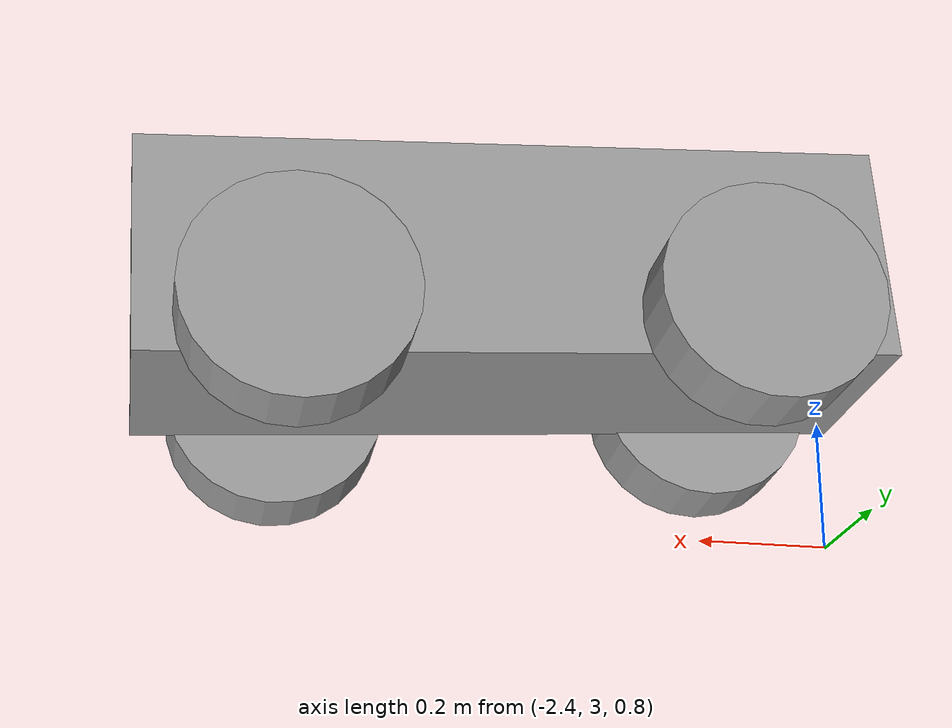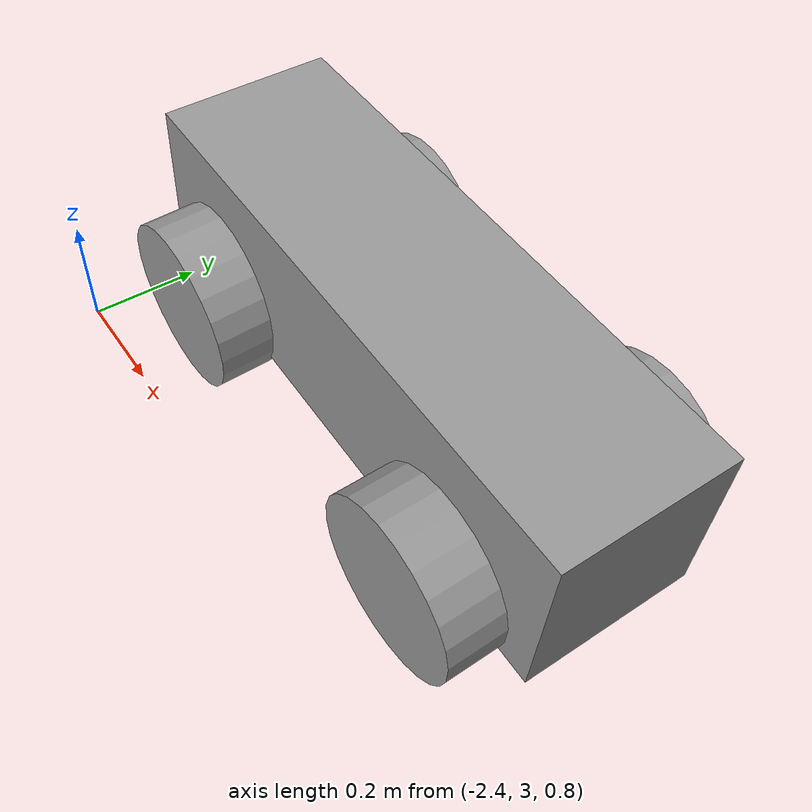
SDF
<?xml version='1.0'?>
<sdf version='1.7'>
  <model name='HumanoidRobot'>
    <link name='link_0'>
      <inertial>
        <mass>1</mass>
        <inertia>
          <ixx>0.166667</ixx>
          <ixy>0</ixy>
          <ixz>0</ixz>
          <iyy>0.166667</iyy>
          <iyz>0</iyz>
          <izz>0.166667</izz>
        </inertia>
        <pose>0 0 0 0 -0 0</pose>
      </inertial>
      <pose>-1.83737 3.32183 1.03724 0.010962 0.070414 0.002619</pose>
      <gravity>1</gravity>
      <self_collide>0</self_collide>
      <kinematic>0</kinematic>
      <enable_wind>0</enable_wind>
      <visual name='visual'>
        <pose>0 0 0 0 -0 0</pose>
        <geometry>
          <box>
            <size>1 0.3 0.3</size>
          </box>
        </geometry>
        <material>
          <lighting>1</lighting>
          <script>
            <uri>file://media/materials/scripts/gazebo.material</uri>
            <name>Gazebo/Grey</name>
          </script>
          <shader type='pixel'>
            <normal_map>__default__</normal_map>
          </shader>
          <ambient>0.3 0.3 0.3 1</ambient>
          <diffuse>0.7 0.7 0.7 1</diffuse>
          <specular>0.01 0.01 0.01 1</specular>
          <emissive>0 0 0 1</emissive>
        </material>
        <transparency>0</transparency>
        <cast_shadows>1</cast_shadows>
      </visual>
      <collision name='collision'>
        <laser_retro>0</laser_retro>
        <max_contacts>10</max_contacts>
        <pose>0 0 0 0 -0 0</pose>
        <geometry>
          <box>
            <size>1 0.3 0.3</size>
          </box>
        </geometry>
        <surface>
          <friction>
            <ode>
              <mu>1</mu>
              <mu2>1</mu2>
              <fdir1>0 0 0</fdir1>
              <slip1>0</slip1>
              <slip2>0</slip2>
            </ode>
            <torsional>
              <coefficient>1</coefficient>
              <patch_radius>0</patch_radius>
              <surface_radius>0</surface_radius>
              <use_patch_radius>1</use_patch_radius>
              <ode>
                <slip>0</slip>
              </ode>
            </torsional>
          </friction>
          <bounce>
            <restitution_coefficient>0</restitution_coefficient>
            <threshold>1e+06</threshold>
          </bounce>
          <contact>
            <collide_without_contact>0</collide_without_contact>
            <collide_without_contact_bitmask>1</collide_without_contact_bitmask>
            <collide_bitmask>1</collide_bitmask>
            <ode>
              <soft_cfm>0</soft_cfm>
              <soft_erp>0.2</soft_erp>
              <kp>1e+13</kp>
              <kd>1</kd>
              <max_vel>0.01</max_vel>
              <min_depth>0</min_depth>
            </ode>
            <bullet>
              <split_impulse>1</split_impulse>
              <split_impulse_penetration_threshold>-0.01</split_impulse_penetration_threshold>
              <soft_cfm>0</soft_cfm>
              <soft_erp>0.2</soft_erp>
              <kp>1e+13</kp>
              <kd>1</kd>
            </bullet>
          </contact>
        </surface>
      </collision>
    </link>
    <link name='link_1'>
      <inertial>
        <mass>1</mass>
        <inertia>
          <ixx>0.145833</ixx>
          <ixy>0</ixy>
          <ixz>0</ixz>
          <iyy>0.145833</iyy>
          <iyz>0</iyz>
          <izz>0.125</izz>
        </inertia>
        <pose>0 0 0 0 -0 0</pose>
      </inertial>
      <pose>-1.54552 3.52368 0.918574 0.010962 0.070414 0.002619</pose>
      <gravity>1</gravity>
      <self_collide>0</self_collide>
      <kinematic>0</kinematic>
      <enable_wind>0</enable_wind>
      <visual name='visual'>
        <pose>0 0 0 1.5702 -0 0</pose>
        <geometry>
          <cylinder>
            <radius>0.15</radius>
            <length>0.1</length>
          </cylinder>
        </geometry>
        <material>
          <lighting>1</lighting>
          <script>
            <uri>file://media/materials/scripts/gazebo.material</uri>
            <name>Gazebo/Grey</name>
          </script>
          <shader type='pixel'>
            <normal_map>__default__</normal_map>
          </shader>
          <ambient>0.3 0.3 0.3 1</ambient>
          <diffuse>0.7 0.7 0.7 1</diffuse>
          <specular>0.01 0.01 0.01 1</specular>
          <emissive>0 0 0 1</emissive>
        </material>
        <transparency>0</transparency>
        <cast_shadows>1</cast_shadows>
      </visual>
      <collision name='collision'>
        <laser_retro>0</laser_retro>
        <max_contacts>10</max_contacts>
        <pose>0 0 0 1.5702 -0 0</pose>
        <geometry>
          <cylinder>
            <radius>0.15</radius>
            <length>0.1</length>
          </cylinder>
        </geometry>
        <surface>
          <friction>
            <ode>
              <mu>1</mu>
              <mu2>1</mu2>
              <fdir1>0 0 0</fdir1>
              <slip1>0</slip1>
              <slip2>0</slip2>
            </ode>
            <torsional>
              <coefficient>1</coefficient>
              <patch_radius>0</patch_radius>
              <surface_radius>0</surface_radius>
              <use_patch_radius>1</use_patch_radius>
              <ode>
                <slip>0</slip>
              </ode>
            </torsional>
          </friction>
          <bounce>
            <restitution_coefficient>0</restitution_coefficient>
            <threshold>1e+06</threshold>
          </bounce>
          <contact>
            <collide_without_contact>0</collide_without_contact>
            <collide_without_contact_bitmask>1</collide_without_contact_bitmask>
            <collide_bitmask>1</collide_bitmask>
            <ode>
              <soft_cfm>0</soft_cfm>
              <soft_erp>0.2</soft_erp>
              <kp>1e+13</kp>
              <kd>1</kd>
              <max_vel>0.01</max_vel>
              <min_depth>0</min_depth>
            </ode>
            <bullet>
              <split_impulse>1</split_impulse>
              <split_impulse_penetration_threshold>-0.01</split_impulse_penetration_threshold>
              <soft_cfm>0</soft_cfm>
              <soft_erp>0.2</soft_erp>
              <kp>1e+13</kp>
              <kd>1</kd>
            </bullet>
          </contact>
        </surface>
      </collision>
    </link>
    <link name='link_1_clone'>
      <inertial>
        <mass>1</mass>
        <inertia>
          <ixx>0.145833</ixx>
          <ixy>0</ixy>
          <ixz>0</ixz>
          <iyy>0.145833</iyy>
          <iyz>0</iyz>
          <izz>0.125</izz>
        </inertia>
        <pose>0 0 0 0 -0 0</pose>
      </inertial>
      <pose>-2.14403 3.52211 0.960787 0.022192 0.140796 0.006036</pose>
      <gravity>1</gravity>
      <self_collide>0</self_collide>
      <kinematic>0</kinematic>
      <enable_wind>0</enable_wind>
      <visual name='visual'>
        <pose>0 0 0 1.5702 -0 0</pose>
        <geometry>
          <cylinder>
            <radius>0.15</radius>
            <length>0.1</length>
          </cylinder>
        </geometry>
        <material>
          <lighting>1</lighting>
          <script>
            <uri>file://media/materials/scripts/gazebo.material</uri>
            <name>Gazebo/Grey</name>
          </script>
          <shader type='pixel'>
            <normal_map>__default__</normal_map>
          </shader>
          <ambient>0.3 0.3 0.3 1</ambient>
          <diffuse>0.7 0.7 0.7 1</diffuse>
          <specular>0.01 0.01 0.01 1</specular>
          <emissive>0 0 0 1</emissive>
        </material>
        <transparency>0</transparency>
        <cast_shadows>1</cast_shadows>
      </visual>
      <collision name='collision'>
        <laser_retro>0</laser_retro>
        <max_contacts>10</max_contacts>
        <pose>0 0 0 1.5702 -0 0</pose>
        <geometry>
          <cylinder>
            <radius>0.15</radius>
            <length>0.1</length>
          </cylinder>
        </geometry>
        <surface>
          <friction>
            <ode>
              <mu>1</mu>
              <mu2>1</mu2>
              <fdir1>0 0 0</fdir1>
              <slip1>0</slip1>
              <slip2>0</slip2>
            </ode>
            <torsional>
              <coefficient>1</coefficient>
              <patch_radius>0</patch_radius>
              <surface_radius>0</surface_radius>
              <use_patch_radius>1</use_patch_radius>
              <ode>
                <slip>0</slip>
              </ode>
            </torsional>
          </friction>
          <bounce>
            <restitution_coefficient>0</restitution_coefficient>
            <threshold>1e+06</threshold>
          </bounce>
          <contact>
            <collide_without_contact>0</collide_without_contact>
            <collide_without_contact_bitmask>1</collide_without_contact_bitmask>
            <collide_bitmask>1</collide_bitmask>
            <ode>
              <soft_cfm>0</soft_cfm>
              <soft_erp>0.2</soft_erp>
              <kp>1e+13</kp>
              <kd>1</kd>
              <max_vel>0.01</max_vel>
              <min_depth>0</min_depth>
            </ode>
            <bullet>
              <split_impulse>1</split_impulse>
              <split_impulse_penetration_threshold>-0.01</split_impulse_penetration_threshold>
              <soft_cfm>0</soft_cfm>
              <soft_erp>0.2</soft_erp>
              <kp>1e+13</kp>
              <kd>1</kd>
            </bullet>
          </contact>
        </surface>
      </collision>
    </link>
    <link name='link_1_clone_clone'>
      <inertial>
        <mass>1</mass>
        <inertia>
          <ixx>0.145833</ixx>
          <ixy>0</ixy>
          <ixz>0</ixz>
          <iyy>0.145833</iyy>
          <iyz>0</iyz>
          <izz>0.125</izz>
        </inertia>
        <pose>0 0 0 0 -0 0</pose>
      </inertial>
      <pose>-1.54478 3.1237 0.9142 0.033809 0.211133 0.010304</pose>
      <gravity>1</gravity>
      <self_collide>0</self_collide>
      <kinematic>0</kinematic>
      <enable_wind>0</enable_wind>
      <visual name='visual'>
        <pose>0 0 0 1.5702 -0 0</pose>
        <geometry>
          <cylinder>
            <radius>0.15</radius>
            <length>0.1</length>
          </cylinder>
        </geometry>
        <material>
          <lighting>1</lighting>
          <script>
            <uri>file://media/materials/scripts/gazebo.material</uri>
            <name>Gazebo/Grey</name>
          </script>
          <shader type='pixel'>
            <normal_map>__default__</normal_map>
          </shader>
          <ambient>0.3 0.3 0.3 1</ambient>
          <diffuse>0.7 0.7 0.7 1</diffuse>
          <specular>0.01 0.01 0.01 1</specular>
          <emissive>0 0 0 1</emissive>
        </material>
        <transparency>0</transparency>
        <cast_shadows>1</cast_shadows>
      </visual>
      <collision name='collision'>
        <laser_retro>0</laser_retro>
        <max_contacts>10</max_contacts>
        <pose>0 0 0 1.5702 -0 0</pose>
        <geometry>
          <cylinder>
            <radius>0.15</radius>
            <length>0.1</length>
          </cylinder>
        </geometry>
        <surface>
          <friction>
            <ode>
              <mu>1</mu>
              <mu2>1</mu2>
              <fdir1>0 0 0</fdir1>
              <slip1>0</slip1>
              <slip2>0</slip2>
            </ode>
            <torsional>
              <coefficient>1</coefficient>
              <patch_radius>0</patch_radius>
              <surface_radius>0</surface_radius>
              <use_patch_radius>1</use_patch_radius>
              <ode>
                <slip>0</slip>
              </ode>
            </torsional>
          </friction>
          <bounce>
            <restitution_coefficient>0</restitution_coefficient>
            <threshold>1e+06</threshold>
          </bounce>
          <contact>
            <collide_without_contact>0</collide_without_contact>
            <collide_without_contact_bitmask>1</collide_without_contact_bitmask>
            <collide_bitmask>1</collide_bitmask>
            <ode>
              <soft_cfm>0</soft_cfm>
              <soft_erp>0.2</soft_erp>
              <kp>1e+13</kp>
              <kd>1</kd>
              <max_vel>0.01</max_vel>
              <min_depth>0</min_depth>
            </ode>
            <bullet>
              <split_impulse>1</split_impulse>
              <split_impulse_penetration_threshold>-0.01</split_impulse_penetration_threshold>
              <soft_cfm>0</soft_cfm>
              <soft_erp>0.2</soft_erp>
              <kp>1e+13</kp>
              <kd>1</kd>
            </bullet>
          </contact>
        </surface>
      </collision>
    </link>
    <link name='link_1_clone_clone_clone'>
      <inertial>
        <mass>1</mass>
        <inertia>
          <ixx>0.145833</ixx>
          <ixy>0</ixy>
          <ixz>0</ixz>
          <iyy>0.145833</iyy>
          <iyz>0</iyz>
          <izz>0.125</izz>
        </inertia>
        <pose>0 0 0 0 -0 0</pose>
      </inertial>
      <pose>-2.16412 3.12671 0.962384 0.044169 0.037219 0.004374</pose>
      <gravity>1</gravity>
      <self_collide>0</self_collide>
      <kinematic>0</kinematic>
      <enable_wind>0</enable_wind>
      <visual name='visual'>
        <pose>0 0 0 1.5702 -0 0</pose>
        <geometry>
          <cylinder>
            <radius>0.15</radius>
            <length>0.1</length>
          </cylinder>
        </geometry>
        <material>
          <lighting>1</lighting>
          <script>
            <uri>file://media/materials/scripts/gazebo.material</uri>
            <name>Gazebo/Grey</name>
          </script>
          <shader type='pixel'>
            <normal_map>__default__</normal_map>
          </shader>
          <ambient>0.3 0.3 0.3 1</ambient>
          <diffuse>0.7 0.7 0.7 1</diffuse>
          <specular>0.01 0.01 0.01 1</specular>
          <emissive>0 0 0 1</emissive>
        </material>
        <transparency>0</transparency>
        <cast_shadows>1</cast_shadows>
      </visual>
      <collision name='collision'>
        <laser_retro>0</laser_retro>
        <max_contacts>10</max_contacts>
        <pose>0 0 0 1.5702 -0 0</pose>
        <geometry>
          <cylinder>
            <radius>0.15</radius>
            <length>0.1</length>
          </cylinder>
        </geometry>
        <surface>
          <friction>
            <ode>
              <mu>1</mu>
              <mu2>1</mu2>
              <fdir1>0 0 0</fdir1>
              <slip1>0</slip1>
              <slip2>0</slip2>
            </ode>
            <torsional>
              <coefficient>1</coefficient>
              <patch_radius>0</patch_radius>
              <surface_radius>0</surface_radius>
              <use_patch_radius>1</use_patch_radius>
              <ode>
                <slip>0</slip>
              </ode>
            </torsional>
          </friction>
          <bounce>
            <restitution_coefficient>0</restitution_coefficient>
            <threshold>1e+06</threshold>
          </bounce>
          <contact>
            <collide_without_contact>0</collide_without_contact>
            <collide_without_contact_bitmask>1</collide_without_contact_bitmask>
            <collide_bitmask>1</collide_bitmask>
            <ode>
              <soft_cfm>0</soft_cfm>
              <soft_erp>0.2</soft_erp>
              <kp>1e+13</kp>
              <kd>1</kd>
              <max_vel>0.01</max_vel>
              <min_depth>0</min_depth>
            </ode>
            <bullet>
              <split_impulse>1</split_impulse>
              <split_impulse_penetration_threshold>-0.01</split_impulse_penetration_threshold>
              <soft_cfm>0</soft_cfm>
              <soft_erp>0.2</soft_erp>
              <kp>1e+13</kp>
              <kd>1</kd>
            </bullet>
          </contact>
        </surface>
      </collision>
    </link>
    <joint name='link_0_JOINT_1' type='revolute'>
      <parent>link_0</parent>
      <child>link_1</child>
      <pose>0 0 0 0 -0 0</pose>
      <axis>
        <xyz>0 1 0</xyz>
        <limit>
          <lower>-1.79769e+308</lower>
          <upper>1.79769e+308</upper>
          <effort>-1</effort>
          <velocity>-1</velocity>
        </limit>
        <dynamics>
          <spring_reference>0</spring_reference>
          <spring_stiffness>0</spring_stiffness>
          <damping>0</damping>
        </dynamics>
      </axis>
      <physics>
        <ode>
          <limit>
            <cfm>0</cfm>
            <erp>0.2</erp>
          </limit>
          <suspension>
            <cfm>0</cfm>
            <erp>0.2</erp>
          </suspension>
        </ode>
      </physics>
    </joint>
    <joint name='link_0_JOINT_2' type='revolute'>
      <parent>link_0</parent>
      <child>link_1_clone</child>
      <pose>0 0 0 0 -0 0</pose>
      <axis>
        <xyz>0 1 0</xyz>
        <limit>
          <lower>-1.79769e+308</lower>
          <upper>1.79769e+308</upper>
          <effort>-1</effort>
          <velocity>-1</velocity>
        </limit>
        <dynamics>
          <spring_reference>0</spring_reference>
          <spring_stiffness>0</spring_stiffness>
          <damping>0</damping>
          <friction>0</friction>
        </dynamics>
      </axis>
      <physics>
        <ode>
          <limit>
            <cfm>0</cfm>
            <erp>0.2</erp>
          </limit>
          <suspension>
            <cfm>0</cfm>
            <erp>0.2</erp>
          </suspension>
        </ode>
      </physics>
    </joint>
    <joint name='link_0_JOINT_3' type='revolute'>
      <parent>link_0</parent>
      <child>link_1_clone_clone</child>
      <pose>0 0 0 0 -0 0</pose>
      <axis>
        <xyz>-0 -1 -0</xyz>
        <limit>
          <lower>-1.79769e+308</lower>
          <upper>1.79769e+308</upper>
          <effort>-1</effort>
          <velocity>-1</velocity>
        </limit>
        <dynamics>
          <spring_reference>0</spring_reference>
          <spring_stiffness>0</spring_stiffness>
          <damping>0</damping>
        </dynamics>
      </axis>
      <physics>
        <ode>
          <limit>
            <cfm>0</cfm>
            <erp>0.2</erp>
          </limit>
          <suspension>
            <cfm>0</cfm>
            <erp>0.2</erp>
          </suspension>
        </ode>
      </physics>
    </joint>
    <joint name='link_0_JOINT_4' type='revolute'>
      <parent>link_0</parent>
      <child>link_1_clone_clone_clone</child>
      <pose>0 0 0 0 -0 0</pose>
      <axis>
        <xyz>-0 -1 -0</xyz>
        <limit>
          <lower>-1.79769e+308</lower>
          <upper>1.79769e+308</upper>
          <effort>-1</effort>
          <velocity>-1</velocity>
        </limit>
        <dynamics>
          <spring_reference>0</spring_reference>
          <spring_stiffness>0</spring_stiffness>
          <damping>0</damping>
        </dynamics>
      </axis>
      <physics>
        <ode>
          <limit>
            <cfm>0</cfm>
            <erp>0.2</erp>
          </limit>
          <suspension>
            <cfm>0</cfm>
            <erp>0.2</erp>
          </suspension>
        </ode>
      </physics>
    </joint>
    <static>0</static>
    <allow_auto_disable>1</allow_auto_disable>
  </model>
</sdf>
